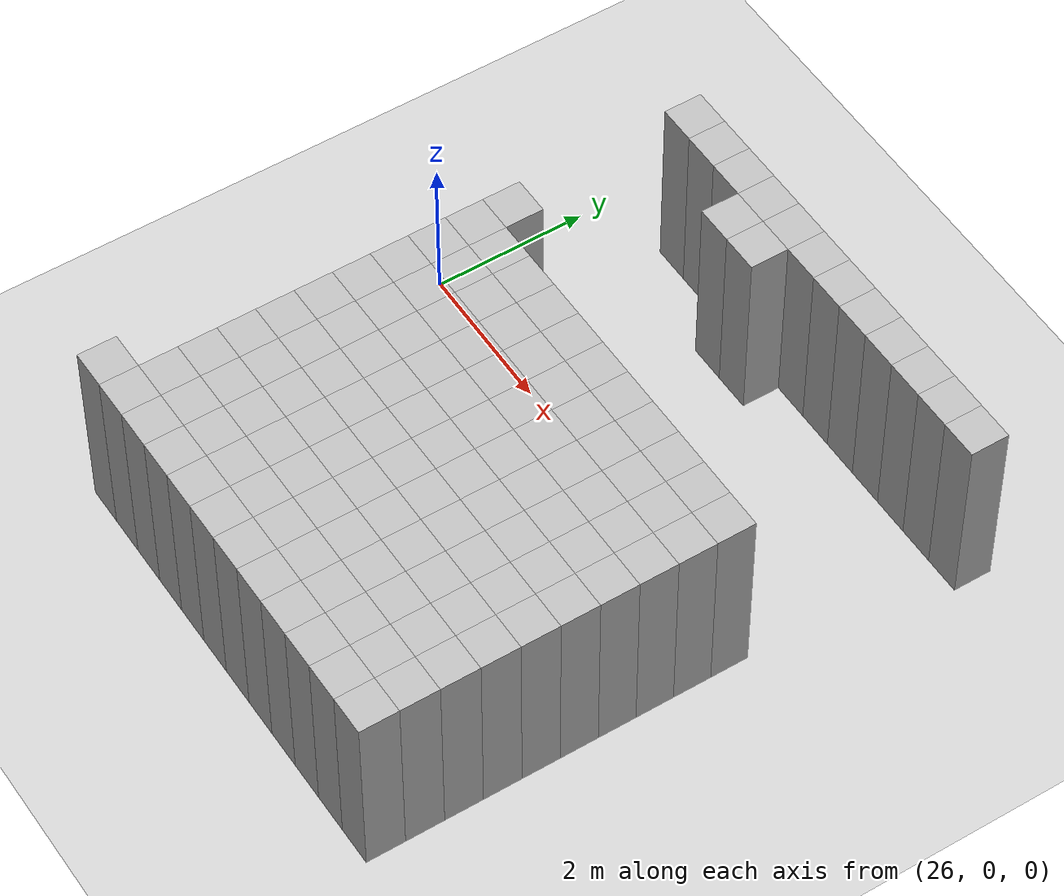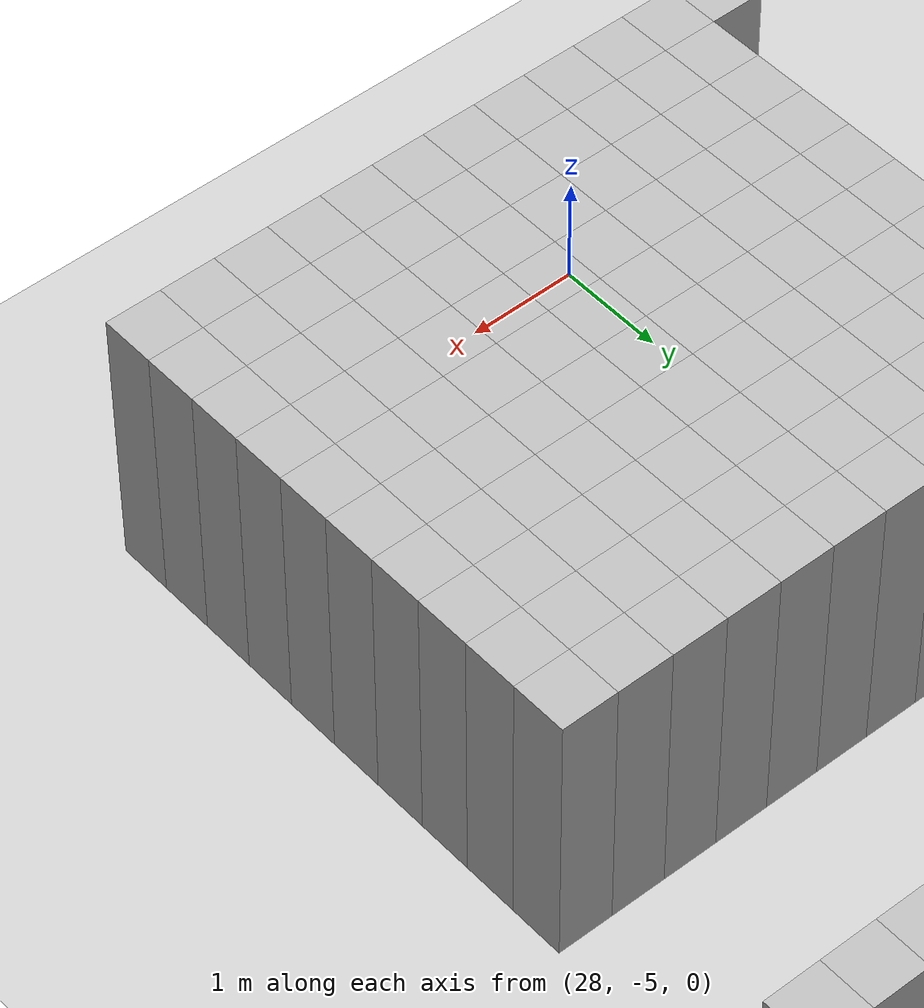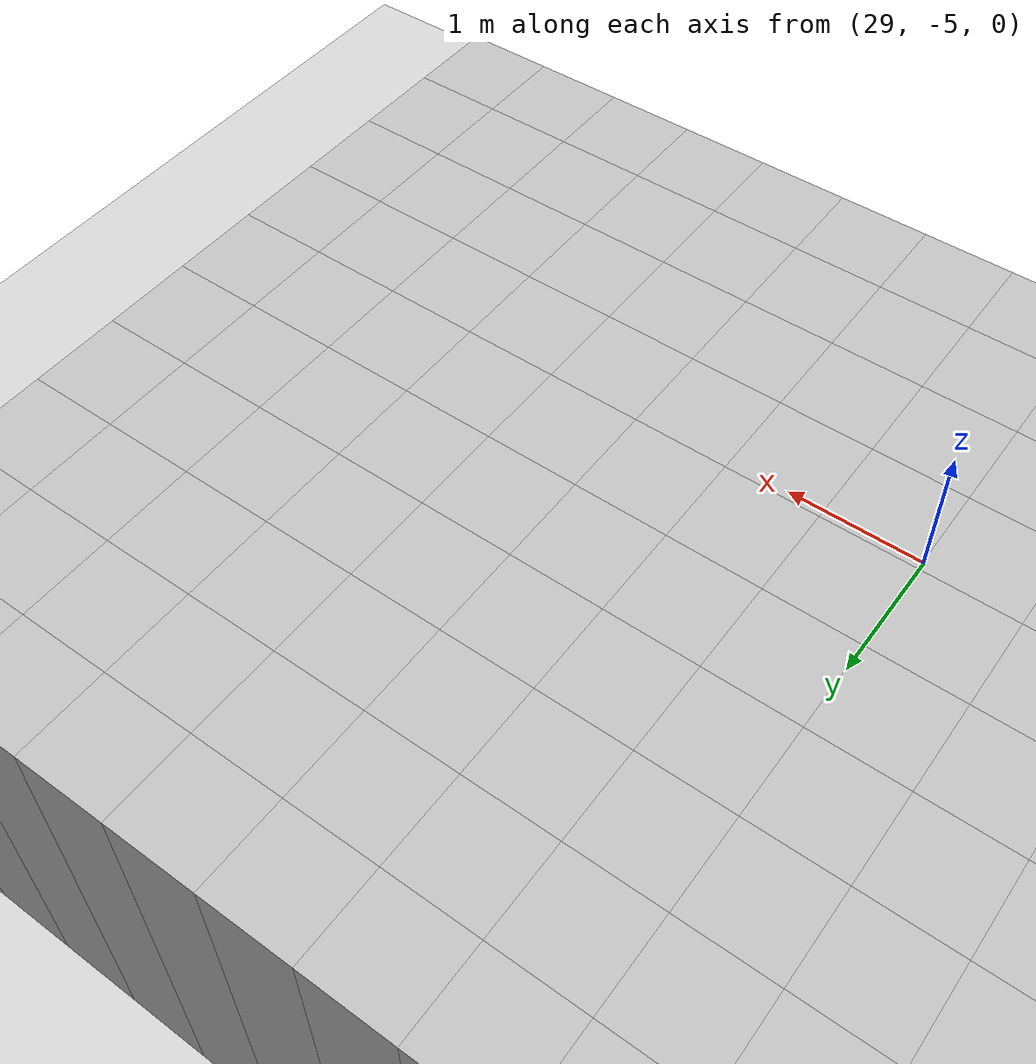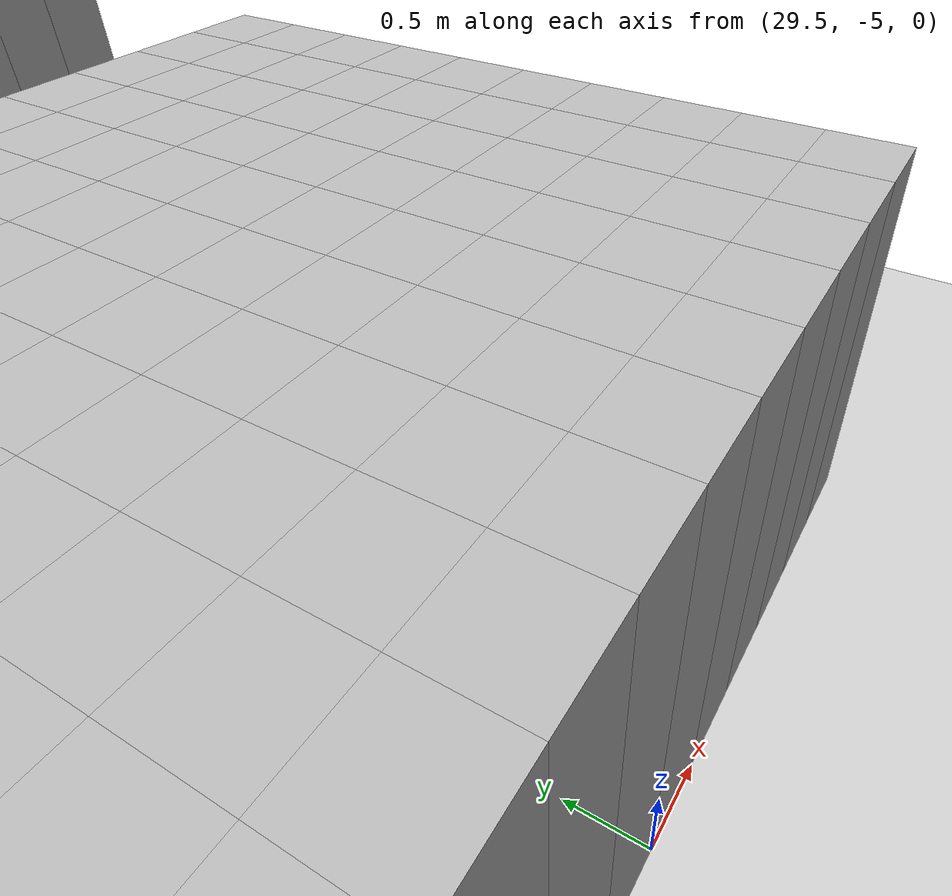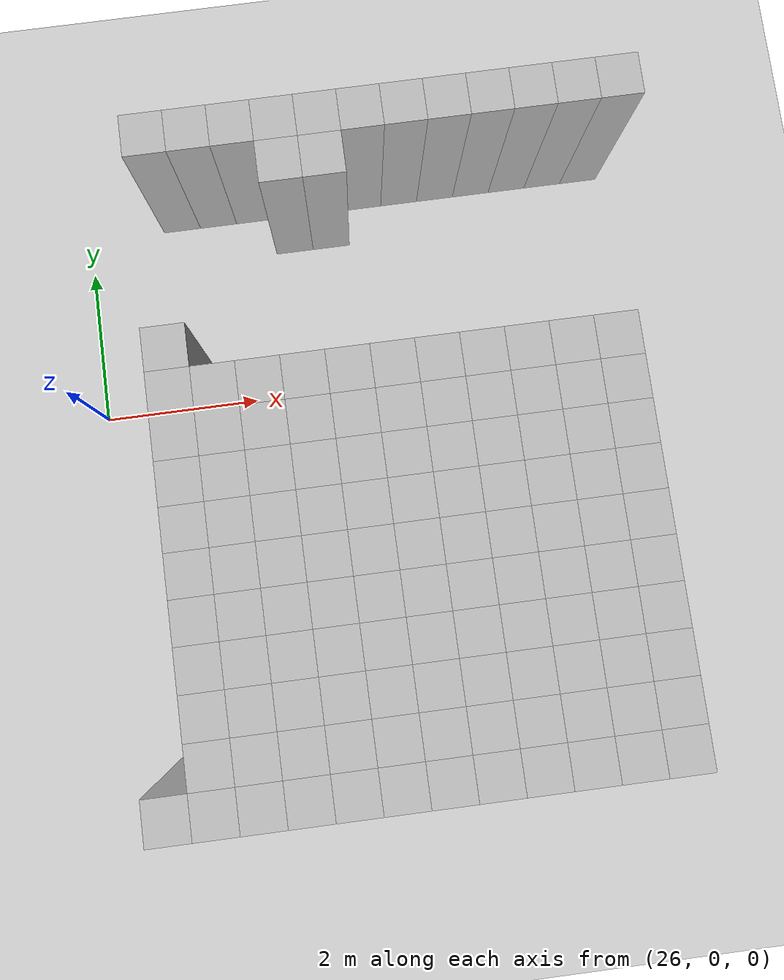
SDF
<sdf version="1.6">
 <world name="map_world">
  <include><uri>model://ground_plane</uri></include>
  <include><uri>model://sun</uri></include>
  <model name="wall_64">
   <static>true</static>
   <pose>27.250 2.750 1.250 0 0 0</pose>
   <link name="link">
    <collision name="collision"><geometry><box><size>0.500 0.500 2.500</size></box></geometry></collision>
    <visual name="visual"><geometry><box><size>0.500 0.500 2.500</size></box></geometry></visual>
   </link>
  </model>
  <model name="wall_65">
   <static>true</static>
   <pose>27.750 2.750 1.250 0 0 0</pose>
   <link name="link">
    <collision name="collision"><geometry><box><size>0.500 0.500 2.500</size></box></geometry></collision>
    <visual name="visual"><geometry><box><size>0.500 0.500 2.500</size></box></geometry></visual>
   </link>
  </model>
  <model name="wall_66">
   <static>true</static>
   <pose>28.250 2.750 1.250 0 0 0</pose>
   <link name="link">
    <collision name="collision"><geometry><box><size>0.500 0.500 2.500</size></box></geometry></collision>
    <visual name="visual"><geometry><box><size>0.500 0.500 2.500</size></box></geometry></visual>
   </link>
  </model>
  <model name="wall_67">
   <static>true</static>
   <pose>28.750 2.750 1.250 0 0 0</pose>
   <link name="link">
    <collision name="collision"><geometry><box><size>0.500 0.500 2.500</size></box></geometry></collision>
    <visual name="visual"><geometry><box><size>0.500 0.500 2.500</size></box></geometry></visual>
   </link>
  </model>
  <model name="wall_68">
   <static>true</static>
   <pose>29.250 2.750 1.250 0 0 0</pose>
   <link name="link">
    <collision name="collision"><geometry><box><size>0.500 0.500 2.500</size></box></geometry></collision>
    <visual name="visual"><geometry><box><size>0.500 0.500 2.500</size></box></geometry></visual>
   </link>
  </model>
  <model name="wall_69">
   <static>true</static>
   <pose>29.750 2.750 1.250 0 0 0</pose>
   <link name="link">
    <collision name="collision"><geometry><box><size>0.500 0.500 2.500</size></box></geometry></collision>
    <visual name="visual"><geometry><box><size>0.500 0.500 2.500</size></box></geometry></visual>
   </link>
  </model>
  <model name="wall_70">
   <static>true</static>
   <pose>30.250 2.750 1.250 0 0 0</pose>
   <link name="link">
    <collision name="collision"><geometry><box><size>0.500 0.500 2.500</size></box></geometry></collision>
    <visual name="visual"><geometry><box><size>0.500 0.500 2.500</size></box></geometry></visual>
   </link>
  </model>
  <model name="wall_71">
   <static>true</static>
   <pose>30.750 2.750 1.250 0 0 0</pose>
   <link name="link">
    <collision name="collision"><geometry><box><size>0.500 0.500 2.500</size></box></geometry></collision>
    <visual name="visual"><geometry><box><size>0.500 0.500 2.500</size></box></geometry></visual>
   </link>
  </model>
  <model name="wall_72">
   <static>true</static>
   <pose>31.250 2.750 1.250 0 0 0</pose>
   <link name="link">
    <collision name="collision"><geometry><box><size>0.500 0.500 2.500</size></box></geometry></collision>
    <visual name="visual"><geometry><box><size>0.500 0.500 2.500</size></box></geometry></visual>
   </link>
  </model>
  <model name="wall_73">
   <static>true</static>
   <pose>31.750 2.750 1.250 0 0 0</pose>
   <link name="link">
    <collision name="collision"><geometry><box><size>0.500 0.500 2.500</size></box></geometry></collision>
    <visual name="visual"><geometry><box><size>0.500 0.500 2.500</size></box></geometry></visual>
   </link>
  </model>
  <model name="wall_74">
   <static>true</static>
   <pose>32.250 2.750 1.250 0 0 0</pose>
   <link name="link">
    <collision name="collision"><geometry><box><size>0.500 0.500 2.500</size></box></geometry></collision>
    <visual name="visual"><geometry><box><size>0.500 0.500 2.500</size></box></geometry></visual>
   </link>
  </model>
  <model name="wall_75">
   <static>true</static>
   <pose>32.750 2.750 1.250 0 0 0</pose>
   <link name="link">
    <collision name="collision"><geometry><box><size>0.500 0.500 2.500</size></box></geometry></collision>
    <visual name="visual"><geometry><box><size>0.500 0.500 2.500</size></box></geometry></visual>
   </link>
  </model>
  <model name="wall_115">
   <static>true</static>
   <pose>28.750 2.250 1.250 0 0 0</pose>
   <link name="link">
    <collision name="collision"><geometry><box><size>0.500 0.500 2.500</size></box></geometry></collision>
    <visual name="visual"><geometry><box><size>0.500 0.500 2.500</size></box></geometry></visual>
   </link>
  </model>
  <model name="wall_116">
   <static>true</static>
   <pose>29.250 2.250 1.250 0 0 0</pose>
   <link name="link">
    <collision name="collision"><geometry><box><size>0.500 0.500 2.500</size></box></geometry></collision>
    <visual name="visual"><geometry><box><size>0.500 0.500 2.500</size></box></geometry></visual>
   </link>
  </model>
  <model name="wall_142">
   <static>true</static>
   <pose>27.250 0.250 1.250 0 0 0</pose>
   <link name="link">
    <collision name="collision"><geometry><box><size>0.500 0.500 2.500</size></box></geometry></collision>
    <visual name="visual"><geometry><box><size>0.500 0.500 2.500</size></box></geometry></visual>
   </link>
  </model>
  <model name="wall_194">
   <static>true</static>
   <pose>27.250 -0.250 1.250 0 0 0</pose>
   <link name="link">
    <collision name="collision"><geometry><box><size>0.500 0.500 2.500</size></box></geometry></collision>
    <visual name="visual"><geometry><box><size>0.500 0.500 2.500</size></box></geometry></visual>
   </link>
  </model>
  <model name="wall_195">
   <static>true</static>
   <pose>27.750 -0.250 1.250 0 0 0</pose>
   <link name="link">
    <collision name="collision"><geometry><box><size>0.500 0.500 2.500</size></box></geometry></collision>
    <visual name="visual"><geometry><box><size>0.500 0.500 2.500</size></box></geometry></visual>
   </link>
  </model>
  <model name="wall_196">
   <static>true</static>
   <pose>28.250 -0.250 1.250 0 0 0</pose>
   <link name="link">
    <collision name="collision"><geometry><box><size>0.500 0.500 2.500</size></box></geometry></collision>
    <visual name="visual"><geometry><box><size>0.500 0.500 2.500</size></box></geometry></visual>
   </link>
  </model>
  <model name="wall_197">
   <static>true</static>
   <pose>28.750 -0.250 1.250 0 0 0</pose>
   <link name="link">
    <collision name="collision"><geometry><box><size>0.500 0.500 2.500</size></box></geometry></collision>
    <visual name="visual"><geometry><box><size>0.500 0.500 2.500</size></box></geometry></visual>
   </link>
  </model>
  <model name="wall_198">
   <static>true</static>
   <pose>29.250 -0.250 1.250 0 0 0</pose>
   <link name="link">
    <collision name="collision"><geometry><box><size>0.500 0.500 2.500</size></box></geometry></collision>
    <visual name="visual"><geometry><box><size>0.500 0.500 2.500</size></box></geometry></visual>
   </link>
  </model>
  <model name="wall_199">
   <static>true</static>
   <pose>29.750 -0.250 1.250 0 0 0</pose>
   <link name="link">
    <collision name="collision"><geometry><box><size>0.500 0.500 2.500</size></box></geometry></collision>
    <visual name="visual"><geometry><box><size>0.500 0.500 2.500</size></box></geometry></visual>
   </link>
  </model>
  <model name="wall_200">
   <static>true</static>
   <pose>30.250 -0.250 1.250 0 0 0</pose>
   <link name="link">
    <collision name="collision"><geometry><box><size>0.500 0.500 2.500</size></box></geometry></collision>
    <visual name="visual"><geometry><box><size>0.500 0.500 2.500</size></box></geometry></visual>
   </link>
  </model>
  <model name="wall_201">
   <static>true</static>
   <pose>30.750 -0.250 1.250 0 0 0</pose>
   <link name="link">
    <collision name="collision"><geometry><box><size>0.500 0.500 2.500</size></box></geometry></collision>
    <visual name="visual"><geometry><box><size>0.500 0.500 2.500</size></box></geometry></visual>
   </link>
  </model>
  <model name="wall_202">
   <static>true</static>
   <pose>31.250 -0.250 1.250 0 0 0</pose>
   <link name="link">
    <collision name="collision"><geometry><box><size>0.500 0.500 2.500</size></box></geometry></collision>
    <visual name="visual"><geometry><box><size>0.500 0.500 2.500</size></box></geometry></visual>
   </link>
  </model>
  <model name="wall_203">
   <static>true</static>
   <pose>31.750 -0.250 1.250 0 0 0</pose>
   <link name="link">
    <collision name="collision"><geometry><box><size>0.500 0.500 2.500</size></box></geometry></collision>
    <visual name="visual"><geometry><box><size>0.500 0.500 2.500</size></box></geometry></visual>
   </link>
  </model>
  <model name="wall_204">
   <static>true</static>
   <pose>32.250 -0.250 1.250 0 0 0</pose>
   <link name="link">
    <collision name="collision"><geometry><box><size>0.500 0.500 2.500</size></box></geometry></collision>
    <visual name="visual"><geometry><box><size>0.500 0.500 2.500</size></box></geometry></visual>
   </link>
  </model>
  <model name="wall_266">
   <static>true</static>
   <pose>27.250 -0.750 1.250 0 0 0</pose>
   <link name="link">
    <collision name="collision"><geometry><box><size>0.500 0.500 2.500</size></box></geometry></collision>
    <visual name="visual"><geometry><box><size>0.500 0.500 2.500</size></box></geometry></visual>
   </link>
  </model>
  <model name="wall_267">
   <static>true</static>
   <pose>27.750 -0.750 1.250 0 0 0</pose>
   <link name="link">
    <collision name="collision"><geometry><box><size>0.500 0.500 2.500</size></box></geometry></collision>
    <visual name="visual"><geometry><box><size>0.500 0.500 2.500</size></box></geometry></visual>
   </link>
  </model>
  <model name="wall_268">
   <static>true</static>
   <pose>28.250 -0.750 1.250 0 0 0</pose>
   <link name="link">
    <collision name="collision"><geometry><box><size>0.500 0.500 2.500</size></box></geometry></collision>
    <visual name="visual"><geometry><box><size>0.500 0.500 2.500</size></box></geometry></visual>
   </link>
  </model>
  <model name="wall_269">
   <static>true</static>
   <pose>28.750 -0.750 1.250 0 0 0</pose>
   <link name="link">
    <collision name="collision"><geometry><box><size>0.500 0.500 2.500</size></box></geometry></collision>
    <visual name="visual"><geometry><box><size>0.500 0.500 2.500</size></box></geometry></visual>
   </link>
  </model>
  <model name="wall_270">
   <static>true</static>
   <pose>29.250 -0.750 1.250 0 0 0</pose>
   <link name="link">
    <collision name="collision"><geometry><box><size>0.500 0.500 2.500</size></box></geometry></collision>
    <visual name="visual"><geometry><box><size>0.500 0.500 2.500</size></box></geometry></visual>
   </link>
  </model>
  <model name="wall_271">
   <static>true</static>
   <pose>29.750 -0.750 1.250 0 0 0</pose>
   <link name="link">
    <collision name="collision"><geometry><box><size>0.500 0.500 2.500</size></box></geometry></collision>
    <visual name="visual"><geometry><box><size>0.500 0.500 2.500</size></box></geometry></visual>
   </link>
  </model>
  <model name="wall_272">
   <static>true</static>
   <pose>30.250 -0.750 1.250 0 0 0</pose>
   <link name="link">
    <collision name="collision"><geometry><box><size>0.500 0.500 2.500</size></box></geometry></collision>
    <visual name="visual"><geometry><box><size>0.500 0.500 2.500</size></box></geometry></visual>
   </link>
  </model>
  <model name="wall_273">
   <static>true</static>
   <pose>30.750 -0.750 1.250 0 0 0</pose>
   <link name="link">
    <collision name="collision"><geometry><box><size>0.500 0.500 2.500</size></box></geometry></collision>
    <visual name="visual"><geometry><box><size>0.500 0.500 2.500</size></box></geometry></visual>
   </link>
  </model>
  <model name="wall_274">
   <static>true</static>
   <pose>31.250 -0.750 1.250 0 0 0</pose>
   <link name="link">
    <collision name="collision"><geometry><box><size>0.500 0.500 2.500</size></box></geometry></collision>
    <visual name="visual"><geometry><box><size>0.500 0.500 2.500</size></box></geometry></visual>
   </link>
  </model>
  <model name="wall_275">
   <static>true</static>
   <pose>31.750 -0.750 1.250 0 0 0</pose>
   <link name="link">
    <collision name="collision"><geometry><box><size>0.500 0.500 2.500</size></box></geometry></collision>
    <visual name="visual"><geometry><box><size>0.500 0.500 2.500</size></box></geometry></visual>
   </link>
  </model>
  <model name="wall_276">
   <static>true</static>
   <pose>32.250 -0.750 1.250 0 0 0</pose>
   <link name="link">
    <collision name="collision"><geometry><box><size>0.500 0.500 2.500</size></box></geometry></collision>
    <visual name="visual"><geometry><box><size>0.500 0.500 2.500</size></box></geometry></visual>
   </link>
  </model>
  <model name="wall_338">
   <static>true</static>
   <pose>27.250 -1.250 1.250 0 0 0</pose>
   <link name="link">
    <collision name="collision"><geometry><box><size>0.500 0.500 2.500</size></box></geometry></collision>
    <visual name="visual"><geometry><box><size>0.500 0.500 2.500</size></box></geometry></visual>
   </link>
  </model>
  <model name="wall_339">
   <static>true</static>
   <pose>27.750 -1.250 1.250 0 0 0</pose>
   <link name="link">
    <collision name="collision"><geometry><box><size>0.500 0.500 2.500</size></box></geometry></collision>
    <visual name="visual"><geometry><box><size>0.500 0.500 2.500</size></box></geometry></visual>
   </link>
  </model>
  <model name="wall_340">
   <static>true</static>
   <pose>28.250 -1.250 1.250 0 0 0</pose>
   <link name="link">
    <collision name="collision"><geometry><box><size>0.500 0.500 2.500</size></box></geometry></collision>
    <visual name="visual"><geometry><box><size>0.500 0.500 2.500</size></box></geometry></visual>
   </link>
  </model>
  <model name="wall_341">
   <static>true</static>
   <pose>28.750 -1.250 1.250 0 0 0</pose>
   <link name="link">
    <collision name="collision"><geometry><box><size>0.500 0.500 2.500</size></box></geometry></collision>
    <visual name="visual"><geometry><box><size>0.500 0.500 2.500</size></box></geometry></visual>
   </link>
  </model>
  <model name="wall_342">
   <static>true</static>
   <pose>29.250 -1.250 1.250 0 0 0</pose>
   <link name="link">
    <collision name="collision"><geometry><box><size>0.500 0.500 2.500</size></box></geometry></collision>
    <visual name="visual"><geometry><box><size>0.500 0.500 2.500</size></box></geometry></visual>
   </link>
  </model>
  <model name="wall_343">
   <static>true</static>
   <pose>29.750 -1.250 1.250 0 0 0</pose>
   <link name="link">
    <collision name="collision"><geometry><box><size>0.500 0.500 2.500</size></box></geometry></collision>
    <visual name="visual"><geometry><box><size>0.500 0.500 2.500</size></box></geometry></visual>
   </link>
  </model>
  <model name="wall_344">
   <static>true</static>
   <pose>30.250 -1.250 1.250 0 0 0</pose>
   <link name="link">
    <collision name="collision"><geometry><box><size>0.500 0.500 2.500</size></box></geometry></collision>
    <visual name="visual"><geometry><box><size>0.500 0.500 2.500</size></box></geometry></visual>
   </link>
  </model>
  <model name="wall_345">
   <static>true</static>
   <pose>30.750 -1.250 1.250 0 0 0</pose>
   <link name="link">
    <collision name="collision"><geometry><box><size>0.500 0.500 2.500</size></box></geometry></collision>
    <visual name="visual"><geometry><box><size>0.500 0.500 2.500</size></box></geometry></visual>
   </link>
  </model>
  <model name="wall_346">
   <static>true</static>
   <pose>31.250 -1.250 1.250 0 0 0</pose>
   <link name="link">
    <collision name="collision"><geometry><box><size>0.500 0.500 2.500</size></box></geometry></collision>
    <visual name="visual"><geometry><box><size>0.500 0.500 2.500</size></box></geometry></visual>
   </link>
  </model>
  <model name="wall_347">
   <static>true</static>
   <pose>31.750 -1.250 1.250 0 0 0</pose>
   <link name="link">
    <collision name="collision"><geometry><box><size>0.500 0.500 2.500</size></box></geometry></collision>
    <visual name="visual"><geometry><box><size>0.500 0.500 2.500</size></box></geometry></visual>
   </link>
  </model>
  <model name="wall_348">
   <static>true</static>
   <pose>32.250 -1.250 1.250 0 0 0</pose>
   <link name="link">
    <collision name="collision"><geometry><box><size>0.500 0.500 2.500</size></box></geometry></collision>
    <visual name="visual"><geometry><box><size>0.500 0.500 2.500</size></box></geometry></visual>
   </link>
  </model>
  <model name="wall_410">
   <static>true</static>
   <pose>27.250 -1.750 1.250 0 0 0</pose>
   <link name="link">
    <collision name="collision"><geometry><box><size>0.500 0.500 2.500</size></box></geometry></collision>
    <visual name="visual"><geometry><box><size>0.500 0.500 2.500</size></box></geometry></visual>
   </link>
  </model>
  <model name="wall_411">
   <static>true</static>
   <pose>27.750 -1.750 1.250 0 0 0</pose>
   <link name="link">
    <collision name="collision"><geometry><box><size>0.500 0.500 2.500</size></box></geometry></collision>
    <visual name="visual"><geometry><box><size>0.500 0.500 2.500</size></box></geometry></visual>
   </link>
  </model>
  <model name="wall_412">
   <static>true</static>
   <pose>28.250 -1.750 1.250 0 0 0</pose>
   <link name="link">
    <collision name="collision"><geometry><box><size>0.500 0.500 2.500</size></box></geometry></collision>
    <visual name="visual"><geometry><box><size>0.500 0.500 2.500</size></box></geometry></visual>
   </link>
  </model>
  <model name="wall_413">
   <static>true</static>
   <pose>28.750 -1.750 1.250 0 0 0</pose>
   <link name="link">
    <collision name="collision"><geometry><box><size>0.500 0.500 2.500</size></box></geometry></collision>
    <visual name="visual"><geometry><box><size>0.500 0.500 2.500</size></box></geometry></visual>
   </link>
  </model>
  <model name="wall_414">
   <static>true</static>
   <pose>29.250 -1.750 1.250 0 0 0</pose>
   <link name="link">
    <collision name="collision"><geometry><box><size>0.500 0.500 2.500</size></box></geometry></collision>
    <visual name="visual"><geometry><box><size>0.500 0.500 2.500</size></box></geometry></visual>
   </link>
  </model>
  <model name="wall_415">
   <static>true</static>
   <pose>29.750 -1.750 1.250 0 0 0</pose>
   <link name="link">
    <collision name="collision"><geometry><box><size>0.500 0.500 2.500</size></box></geometry></collision>
    <visual name="visual"><geometry><box><size>0.500 0.500 2.500</size></box></geometry></visual>
   </link>
  </model>
  <model name="wall_416">
   <static>true</static>
   <pose>30.250 -1.750 1.250 0 0 0</pose>
   <link name="link">
    <collision name="collision"><geometry><box><size>0.500 0.500 2.500</size></box></geometry></collision>
    <visual name="visual"><geometry><box><size>0.500 0.500 2.500</size></box></geometry></visual>
   </link>
  </model>
  <model name="wall_417">
   <static>true</static>
   <pose>30.750 -1.750 1.250 0 0 0</pose>
   <link name="link">
    <collision name="collision"><geometry><box><size>0.500 0.500 2.500</size></box></geometry></collision>
    <visual name="visual"><geometry><box><size>0.500 0.500 2.500</size></box></geometry></visual>
   </link>
  </model>
  <model name="wall_418">
   <static>true</static>
   <pose>31.250 -1.750 1.250 0 0 0</pose>
   <link name="link">
    <collision name="collision"><geometry><box><size>0.500 0.500 2.500</size></box></geometry></collision>
    <visual name="visual"><geometry><box><size>0.500 0.500 2.500</size></box></geometry></visual>
   </link>
  </model>
  <model name="wall_419">
   <static>true</static>
   <pose>31.750 -1.750 1.250 0 0 0</pose>
   <link name="link">
    <collision name="collision"><geometry><box><size>0.500 0.500 2.500</size></box></geometry></collision>
    <visual name="visual"><geometry><box><size>0.500 0.500 2.500</size></box></geometry></visual>
   </link>
  </model>
  <model name="wall_420">
   <static>true</static>
   <pose>32.250 -1.750 1.250 0 0 0</pose>
   <link name="link">
    <collision name="collision"><geometry><box><size>0.500 0.500 2.500</size></box></geometry></collision>
    <visual name="visual"><geometry><box><size>0.500 0.500 2.500</size></box></geometry></visual>
   </link>
  </model>
  <model name="wall_482">
   <static>true</static>
   <pose>27.250 -2.250 1.250 0 0 0</pose>
   <link name="link">
    <collision name="collision"><geometry><box><size>0.500 0.500 2.500</size></box></geometry></collision>
    <visual name="visual"><geometry><box><size>0.500 0.500 2.500</size></box></geometry></visual>
   </link>
  </model>
  <model name="wall_483">
   <static>true</static>
   <pose>27.750 -2.250 1.250 0 0 0</pose>
   <link name="link">
    <collision name="collision"><geometry><box><size>0.500 0.500 2.500</size></box></geometry></collision>
    <visual name="visual"><geometry><box><size>0.500 0.500 2.500</size></box></geometry></visual>
   </link>
  </model>
  <model name="wall_484">
   <static>true</static>
   <pose>28.250 -2.250 1.250 0 0 0</pose>
   <link name="link">
    <collision name="collision"><geometry><box><size>0.500 0.500 2.500</size></box></geometry></collision>
    <visual name="visual"><geometry><box><size>0.500 0.500 2.500</size></box></geometry></visual>
   </link>
  </model>
  <model name="wall_485">
   <static>true</static>
   <pose>28.750 -2.250 1.250 0 0 0</pose>
   <link name="link">
    <collision name="collision"><geometry><box><size>0.500 0.500 2.500</size></box></geometry></collision>
    <visual name="visual"><geometry><box><size>0.500 0.500 2.500</size></box></geometry></visual>
   </link>
  </model>
  <model name="wall_486">
   <static>true</static>
   <pose>29.250 -2.250 1.250 0 0 0</pose>
   <link name="link">
    <collision name="collision"><geometry><box><size>0.500 0.500 2.500</size></box></geometry></collision>
    <visual name="visual"><geometry><box><size>0.500 0.500 2.500</size></box></geometry></visual>
   </link>
  </model>
  <model name="wall_487">
   <static>true</static>
   <pose>29.750 -2.250 1.250 0 0 0</pose>
   <link name="link">
    <collision name="collision"><geometry><box><size>0.500 0.500 2.500</size></box></geometry></collision>
    <visual name="visual"><geometry><box><size>0.500 0.500 2.500</size></box></geometry></visual>
   </link>
  </model>
  <model name="wall_488">
   <static>true</static>
   <pose>30.250 -2.250 1.250 0 0 0</pose>
   <link name="link">
    <collision name="collision"><geometry><box><size>0.500 0.500 2.500</size></box></geometry></collision>
    <visual name="visual"><geometry><box><size>0.500 0.500 2.500</size></box></geometry></visual>
   </link>
  </model>
  <model name="wall_489">
   <static>true</static>
   <pose>30.750 -2.250 1.250 0 0 0</pose>
   <link name="link">
    <collision name="collision"><geometry><box><size>0.500 0.500 2.500</size></box></geometry></collision>
    <visual name="visual"><geometry><box><size>0.500 0.500 2.500</size></box></geometry></visual>
   </link>
  </model>
  <model name="wall_490">
   <static>true</static>
   <pose>31.250 -2.250 1.250 0 0 0</pose>
   <link name="link">
    <collision name="collision"><geometry><box><size>0.500 0.500 2.500</size></box></geometry></collision>
    <visual name="visual"><geometry><box><size>0.500 0.500 2.500</size></box></geometry></visual>
   </link>
  </model>
  <model name="wall_491">
   <static>true</static>
   <pose>31.750 -2.250 1.250 0 0 0</pose>
   <link name="link">
    <collision name="collision"><geometry><box><size>0.500 0.500 2.500</size></box></geometry></collision>
    <visual name="visual"><geometry><box><size>0.500 0.500 2.500</size></box></geometry></visual>
   </link>
  </model>
  <model name="wall_492">
   <static>true</static>
   <pose>32.250 -2.250 1.250 0 0 0</pose>
   <link name="link">
    <collision name="collision"><geometry><box><size>0.500 0.500 2.500</size></box></geometry></collision>
    <visual name="visual"><geometry><box><size>0.500 0.500 2.500</size></box></geometry></visual>
   </link>
  </model>
  <model name="wall_554">
   <static>true</static>
   <pose>27.250 -2.750 1.250 0 0 0</pose>
   <link name="link">
    <collision name="collision"><geometry><box><size>0.500 0.500 2.500</size></box></geometry></collision>
    <visual name="visual"><geometry><box><size>0.500 0.500 2.500</size></box></geometry></visual>
   </link>
  </model>
  <model name="wall_555">
   <static>true</static>
   <pose>27.750 -2.750 1.250 0 0 0</pose>
   <link name="link">
    <collision name="collision"><geometry><box><size>0.500 0.500 2.500</size></box></geometry></collision>
    <visual name="visual"><geometry><box><size>0.500 0.500 2.500</size></box></geometry></visual>
   </link>
  </model>
  <model name="wall_556">
   <static>true</static>
   <pose>28.250 -2.750 1.250 0 0 0</pose>
   <link name="link">
    <collision name="collision"><geometry><box><size>0.500 0.500 2.500</size></box></geometry></collision>
    <visual name="visual"><geometry><box><size>0.500 0.500 2.500</size></box></geometry></visual>
   </link>
  </model>
  <model name="wall_557">
   <static>true</static>
   <pose>28.750 -2.750 1.250 0 0 0</pose>
   <link name="link">
    <collision name="collision"><geometry><box><size>0.500 0.500 2.500</size></box></geometry></collision>
    <visual name="visual"><geometry><box><size>0.500 0.500 2.500</size></box></geometry></visual>
   </link>
  </model>
  <model name="wall_558">
   <static>true</static>
   <pose>29.250 -2.750 1.250 0 0 0</pose>
   <link name="link">
    <collision name="collision"><geometry><box><size>0.500 0.500 2.500</size></box></geometry></collision>
    <visual name="visual"><geometry><box><size>0.500 0.500 2.500</size></box></geometry></visual>
   </link>
  </model>
  <model name="wall_559">
   <static>true</static>
   <pose>29.750 -2.750 1.250 0 0 0</pose>
   <link name="link">
    <collision name="collision"><geometry><box><size>0.500 0.500 2.500</size></box></geometry></collision>
    <visual name="visual"><geometry><box><size>0.500 0.500 2.500</size></box></geometry></visual>
   </link>
  </model>
  <model name="wall_560">
   <static>true</static>
   <pose>30.250 -2.750 1.250 0 0 0</pose>
   <link name="link">
    <collision name="collision"><geometry><box><size>0.500 0.500 2.500</size></box></geometry></collision>
    <visual name="visual"><geometry><box><size>0.500 0.500 2.500</size></box></geometry></visual>
   </link>
  </model>
  <model name="wall_561">
   <static>true</static>
   <pose>30.750 -2.750 1.250 0 0 0</pose>
   <link name="link">
    <collision name="collision"><geometry><box><size>0.500 0.500 2.500</size></box></geometry></collision>
    <visual name="visual"><geometry><box><size>0.500 0.500 2.500</size></box></geometry></visual>
   </link>
  </model>
  <model name="wall_562">
   <static>true</static>
   <pose>31.250 -2.750 1.250 0 0 0</pose>
   <link name="link">
    <collision name="collision"><geometry><box><size>0.500 0.500 2.500</size></box></geometry></collision>
    <visual name="visual"><geometry><box><size>0.500 0.500 2.500</size></box></geometry></visual>
   </link>
  </model>
  <model name="wall_563">
   <static>true</static>
   <pose>31.750 -2.750 1.250 0 0 0</pose>
   <link name="link">
    <collision name="collision"><geometry><box><size>0.500 0.500 2.500</size></box></geometry></collision>
    <visual name="visual"><geometry><box><size>0.500 0.500 2.500</size></box></geometry></visual>
   </link>
  </model>
  <model name="wall_564">
   <static>true</static>
   <pose>32.250 -2.750 1.250 0 0 0</pose>
   <link name="link">
    <collision name="collision"><geometry><box><size>0.500 0.500 2.500</size></box></geometry></collision>
    <visual name="visual"><geometry><box><size>0.500 0.500 2.500</size></box></geometry></visual>
   </link>
  </model>
  <model name="wall_626">
   <static>true</static>
   <pose>27.250 -3.250 1.250 0 0 0</pose>
   <link name="link">
    <collision name="collision"><geometry><box><size>0.500 0.500 2.500</size></box></geometry></collision>
    <visual name="visual"><geometry><box><size>0.500 0.500 2.500</size></box></geometry></visual>
   </link>
  </model>
  <model name="wall_627">
   <static>true</static>
   <pose>27.750 -3.250 1.250 0 0 0</pose>
   <link name="link">
    <collision name="collision"><geometry><box><size>0.500 0.500 2.500</size></box></geometry></collision>
    <visual name="visual"><geometry><box><size>0.500 0.500 2.500</size></box></geometry></visual>
   </link>
  </model>
  <model name="wall_628">
   <static>true</static>
   <pose>28.250 -3.250 1.250 0 0 0</pose>
   <link name="link">
    <collision name="collision"><geometry><box><size>0.500 0.500 2.500</size></box></geometry></collision>
    <visual name="visual"><geometry><box><size>0.500 0.500 2.500</size></box></geometry></visual>
   </link>
  </model>
  <model name="wall_629">
   <static>true</static>
   <pose>28.750 -3.250 1.250 0 0 0</pose>
   <link name="link">
    <collision name="collision"><geometry><box><size>0.500 0.500 2.500</size></box></geometry></collision>
    <visual name="visual"><geometry><box><size>0.500 0.500 2.500</size></box></geometry></visual>
   </link>
  </model>
  <model name="wall_630">
   <static>true</static>
   <pose>29.250 -3.250 1.250 0 0 0</pose>
   <link name="link">
    <collision name="collision"><geometry><box><size>0.500 0.500 2.500</size></box></geometry></collision>
    <visual name="visual"><geometry><box><size>0.500 0.500 2.500</size></box></geometry></visual>
   </link>
  </model>
  <model name="wall_631">
   <static>true</static>
   <pose>29.750 -3.250 1.250 0 0 0</pose>
   <link name="link">
    <collision name="collision"><geometry><box><size>0.500 0.500 2.500</size></box></geometry></collision>
    <visual name="visual"><geometry><box><size>0.500 0.500 2.500</size></box></geometry></visual>
   </link>
  </model>
  <model name="wall_632">
   <static>true</static>
   <pose>30.250 -3.250 1.250 0 0 0</pose>
   <link name="link">
    <collision name="collision"><geometry><box><size>0.500 0.500 2.500</size></box></geometry></collision>
    <visual name="visual"><geometry><box><size>0.500 0.500 2.500</size></box></geometry></visual>
   </link>
  </model>
  <model name="wall_633">
   <static>true</static>
   <pose>30.750 -3.250 1.250 0 0 0</pose>
   <link name="link">
    <collision name="collision"><geometry><box><size>0.500 0.500 2.500</size></box></geometry></collision>
    <visual name="visual"><geometry><box><size>0.500 0.500 2.500</size></box></geometry></visual>
   </link>
  </model>
  <model name="wall_634">
   <static>true</static>
   <pose>31.250 -3.250 1.250 0 0 0</pose>
   <link name="link">
    <collision name="collision"><geometry><box><size>0.500 0.500 2.500</size></box></geometry></collision>
    <visual name="visual"><geometry><box><size>0.500 0.500 2.500</size></box></geometry></visual>
   </link>
  </model>
  <model name="wall_635">
   <static>true</static>
   <pose>31.750 -3.250 1.250 0 0 0</pose>
   <link name="link">
    <collision name="collision"><geometry><box><size>0.500 0.500 2.500</size></box></geometry></collision>
    <visual name="visual"><geometry><box><size>0.500 0.500 2.500</size></box></geometry></visual>
   </link>
  </model>
  <model name="wall_636">
   <static>true</static>
   <pose>32.250 -3.250 1.250 0 0 0</pose>
   <link name="link">
    <collision name="collision"><geometry><box><size>0.500 0.500 2.500</size></box></geometry></collision>
    <visual name="visual"><geometry><box><size>0.500 0.500 2.500</size></box></geometry></visual>
   </link>
  </model>
  <model name="wall_698">
   <static>true</static>
   <pose>27.250 -3.750 1.250 0 0 0</pose>
   <link name="link">
    <collision name="collision"><geometry><box><size>0.500 0.500 2.500</size></box></geometry></collision>
    <visual name="visual"><geometry><box><size>0.500 0.500 2.500</size></box></geometry></visual>
   </link>
  </model>
  <model name="wall_699">
   <static>true</static>
   <pose>27.750 -3.750 1.250 0 0 0</pose>
   <link name="link">
    <collision name="collision"><geometry><box><size>0.500 0.500 2.500</size></box></geometry></collision>
    <visual name="visual"><geometry><box><size>0.500 0.500 2.500</size></box></geometry></visual>
   </link>
  </model>
  <model name="wall_700">
   <static>true</static>
   <pose>28.250 -3.750 1.250 0 0 0</pose>
   <link name="link">
    <collision name="collision"><geometry><box><size>0.500 0.500 2.500</size></box></geometry></collision>
    <visual name="visual"><geometry><box><size>0.500 0.500 2.500</size></box></geometry></visual>
   </link>
  </model>
  <model name="wall_701">
   <static>true</static>
   <pose>28.750 -3.750 1.250 0 0 0</pose>
   <link name="link">
    <collision name="collision"><geometry><box><size>0.500 0.500 2.500</size></box></geometry></collision>
    <visual name="visual"><geometry><box><size>0.500 0.500 2.500</size></box></geometry></visual>
   </link>
  </model>
  <model name="wall_702">
   <static>true</static>
   <pose>29.250 -3.750 1.250 0 0 0</pose>
   <link name="link">
    <collision name="collision"><geometry><box><size>0.500 0.500 2.500</size></box></geometry></collision>
    <visual name="visual"><geometry><box><size>0.500 0.500 2.500</size></box></geometry></visual>
   </link>
  </model>
  <model name="wall_703">
   <static>true</static>
   <pose>29.750 -3.750 1.250 0 0 0</pose>
   <link name="link">
    <collision name="collision"><geometry><box><size>0.500 0.500 2.500</size></box></geometry></collision>
    <visual name="visual"><geometry><box><size>0.500 0.500 2.500</size></box></geometry></visual>
   </link>
  </model>
  <model name="wall_704">
   <static>true</static>
   <pose>30.250 -3.750 1.250 0 0 0</pose>
   <link name="link">
    <collision name="collision"><geometry><box><size>0.500 0.500 2.500</size></box></geometry></collision>
    <visual name="visual"><geometry><box><size>0.500 0.500 2.500</size></box></geometry></visual>
   </link>
  </model>
  <model name="wall_705">
   <static>true</static>
   <pose>30.750 -3.750 1.250 0 0 0</pose>
   <link name="link">
    <collision name="collision"><geometry><box><size>0.500 0.500 2.500</size></box></geometry></collision>
    <visual name="visual"><geometry><box><size>0.500 0.500 2.500</size></box></geometry></visual>
   </link>
  </model>
  <model name="wall_706">
   <static>true</static>
   <pose>31.250 -3.750 1.250 0 0 0</pose>
   <link name="link">
    <collision name="collision"><geometry><box><size>0.500 0.500 2.500</size></box></geometry></collision>
    <visual name="visual"><geometry><box><size>0.500 0.500 2.500</size></box></geometry></visual>
   </link>
  </model>
  <model name="wall_707">
   <static>true</static>
   <pose>31.750 -3.750 1.250 0 0 0</pose>
   <link name="link">
    <collision name="collision"><geometry><box><size>0.500 0.500 2.500</size></box></geometry></collision>
    <visual name="visual"><geometry><box><size>0.500 0.500 2.500</size></box></geometry></visual>
   </link>
  </model>
  <model name="wall_708">
   <static>true</static>
   <pose>32.250 -3.750 1.250 0 0 0</pose>
   <link name="link">
    <collision name="collision"><geometry><box><size>0.500 0.500 2.500</size></box></geometry></collision>
    <visual name="visual"><geometry><box><size>0.500 0.500 2.500</size></box></geometry></visual>
   </link>
  </model>
  <model name="wall_770">
   <static>true</static>
   <pose>27.250 -4.250 1.250 0 0 0</pose>
   <link name="link">
    <collision name="collision"><geometry><box><size>0.500 0.500 2.500</size></box></geometry></collision>
    <visual name="visual"><geometry><box><size>0.500 0.500 2.500</size></box></geometry></visual>
   </link>
  </model>
  <model name="wall_771">
   <static>true</static>
   <pose>27.750 -4.250 1.250 0 0 0</pose>
   <link name="link">
    <collision name="collision"><geometry><box><size>0.500 0.500 2.500</size></box></geometry></collision>
    <visual name="visual"><geometry><box><size>0.500 0.500 2.500</size></box></geometry></visual>
   </link>
  </model>
  <model name="wall_772">
   <static>true</static>
   <pose>28.250 -4.250 1.250 0 0 0</pose>
   <link name="link">
    <collision name="collision"><geometry><box><size>0.500 0.500 2.500</size></box></geometry></collision>
    <visual name="visual"><geometry><box><size>0.500 0.500 2.500</size></box></geometry></visual>
   </link>
  </model>
  <model name="wall_773">
   <static>true</static>
   <pose>28.750 -4.250 1.250 0 0 0</pose>
   <link name="link">
    <collision name="collision"><geometry><box><size>0.500 0.500 2.500</size></box></geometry></collision>
    <visual name="visual"><geometry><box><size>0.500 0.500 2.500</size></box></geometry></visual>
   </link>
  </model>
  <model name="wall_774">
   <static>true</static>
   <pose>29.250 -4.250 1.250 0 0 0</pose>
   <link name="link">
    <collision name="collision"><geometry><box><size>0.500 0.500 2.500</size></box></geometry></collision>
    <visual name="visual"><geometry><box><size>0.500 0.500 2.500</size></box></geometry></visual>
   </link>
  </model>
  <model name="wall_775">
   <static>true</static>
   <pose>29.750 -4.250 1.250 0 0 0</pose>
   <link name="link">
    <collision name="collision"><geometry><box><size>0.500 0.500 2.500</size></box></geometry></collision>
    <visual name="visual"><geometry><box><size>0.500 0.500 2.500</size></box></geometry></visual>
   </link>
  </model>
  <model name="wall_776">
   <static>true</static>
   <pose>30.250 -4.250 1.250 0 0 0</pose>
   <link name="link">
    <collision name="collision"><geometry><box><size>0.500 0.500 2.500</size></box></geometry></collision>
    <visual name="visual"><geometry><box><size>0.500 0.500 2.500</size></box></geometry></visual>
   </link>
  </model>
  <model name="wall_777">
   <static>true</static>
   <pose>30.750 -4.250 1.250 0 0 0</pose>
   <link name="link">
    <collision name="collision"><geometry><box><size>0.500 0.500 2.500</size></box></geometry></collision>
    <visual name="visual"><geometry><box><size>0.500 0.500 2.500</size></box></geometry></visual>
   </link>
  </model>
  <model name="wall_778">
   <static>true</static>
   <pose>31.250 -4.250 1.250 0 0 0</pose>
   <link name="link">
    <collision name="collision"><geometry><box><size>0.500 0.500 2.500</size></box></geometry></collision>
    <visual name="visual"><geometry><box><size>0.500 0.500 2.500</size></box></geometry></visual>
   </link>
  </model>
  <model name="wall_779">
   <static>true</static>
   <pose>31.750 -4.250 1.250 0 0 0</pose>
   <link name="link">
    <collision name="collision"><geometry><box><size>0.500 0.500 2.500</size></box></geometry></collision>
    <visual name="visual"><geometry><box><size>0.500 0.500 2.500</size></box></geometry></visual>
   </link>
  </model>
  <model name="wall_780">
   <static>true</static>
   <pose>32.250 -4.250 1.250 0 0 0</pose>
   <link name="link">
    <collision name="collision"><geometry><box><size>0.500 0.500 2.500</size></box></geometry></collision>
    <visual name="visual"><geometry><box><size>0.500 0.500 2.500</size></box></geometry></visual>
   </link>
  </model>
  <model name="wall_855">
   <static>true</static>
   <pose>26.750 -4.750 1.250 0 0 0</pose>
   <link name="link">
    <collision name="collision"><geometry><box><size>0.500 0.500 2.500</size></box></geometry></collision>
    <visual name="visual"><geometry><box><size>0.500 0.500 2.500</size></box></geometry></visual>
   </link>
  </model>
  <model name="wall_856">
   <static>true</static>
   <pose>27.250 -4.750 1.250 0 0 0</pose>
   <link name="link">
    <collision name="collision"><geometry><box><size>0.500 0.500 2.500</size></box></geometry></collision>
    <visual name="visual"><geometry><box><size>0.500 0.500 2.500</size></box></geometry></visual>
   </link>
  </model>
  <model name="wall_857">
   <static>true</static>
   <pose>27.750 -4.750 1.250 0 0 0</pose>
   <link name="link">
    <collision name="collision"><geometry><box><size>0.500 0.500 2.500</size></box></geometry></collision>
    <visual name="visual"><geometry><box><size>0.500 0.500 2.500</size></box></geometry></visual>
   </link>
  </model>
  <model name="wall_858">
   <static>true</static>
   <pose>28.250 -4.750 1.250 0 0 0</pose>
   <link name="link">
    <collision name="collision"><geometry><box><size>0.500 0.500 2.500</size></box></geometry></collision>
    <visual name="visual"><geometry><box><size>0.500 0.500 2.500</size></box></geometry></visual>
   </link>
  </model>
  <model name="wall_859">
   <static>true</static>
   <pose>28.750 -4.750 1.250 0 0 0</pose>
   <link name="link">
    <collision name="collision"><geometry><box><size>0.500 0.500 2.500</size></box></geometry></collision>
    <visual name="visual"><geometry><box><size>0.500 0.500 2.500</size></box></geometry></visual>
   </link>
  </model>
  <model name="wall_860">
   <static>true</static>
   <pose>29.250 -4.750 1.250 0 0 0</pose>
   <link name="link">
    <collision name="collision"><geometry><box><size>0.500 0.500 2.500</size></box></geometry></collision>
    <visual name="visual"><geometry><box><size>0.500 0.500 2.500</size></box></geometry></visual>
   </link>
  </model>
  <model name="wall_861">
   <static>true</static>
   <pose>29.750 -4.750 1.250 0 0 0</pose>
   <link name="link">
    <collision name="collision"><geometry><box><size>0.500 0.500 2.500</size></box></geometry></collision>
    <visual name="visual"><geometry><box><size>0.500 0.500 2.500</size></box></geometry></visual>
   </link>
  </model>
  <model name="wall_862">
   <static>true</static>
   <pose>30.250 -4.750 1.250 0 0 0</pose>
   <link name="link">
    <collision name="collision"><geometry><box><size>0.500 0.500 2.500</size></box></geometry></collision>
    <visual name="visual"><geometry><box><size>0.500 0.500 2.500</size></box></geometry></visual>
   </link>
  </model>
  <model name="wall_863">
   <static>true</static>
   <pose>30.750 -4.750 1.250 0 0 0</pose>
   <link name="link">
    <collision name="collision"><geometry><box><size>0.500 0.500 2.500</size></box></geometry></collision>
    <visual name="visual"><geometry><box><size>0.500 0.500 2.500</size></box></geometry></visual>
   </link>
  </model>
  <model name="wall_864">
   <static>true</static>
   <pose>31.250 -4.750 1.250 0 0 0</pose>
   <link name="link">
    <collision name="collision"><geometry><box><size>0.500 0.500 2.500</size></box></geometry></collision>
    <visual name="visual"><geometry><box><size>0.500 0.500 2.500</size></box></geometry></visual>
   </link>
  </model>
  <model name="wall_865">
   <static>true</static>
   <pose>31.750 -4.750 1.250 0 0 0</pose>
   <link name="link">
    <collision name="collision"><geometry><box><size>0.500 0.500 2.500</size></box></geometry></collision>
    <visual name="visual"><geometry><box><size>0.500 0.500 2.500</size></box></geometry></visual>
   </link>
  </model>
  <model name="wall_866">
   <static>true</static>
   <pose>32.250 -4.750 1.250 0 0 0</pose>
   <link name="link">
    <collision name="collision"><geometry><box><size>0.500 0.500 2.500</size></box></geometry></collision>
    <visual name="visual"><geometry><box><size>0.500 0.500 2.500</size></box></geometry></visual>
   </link>
  </model>
 </world>
</sdf>
